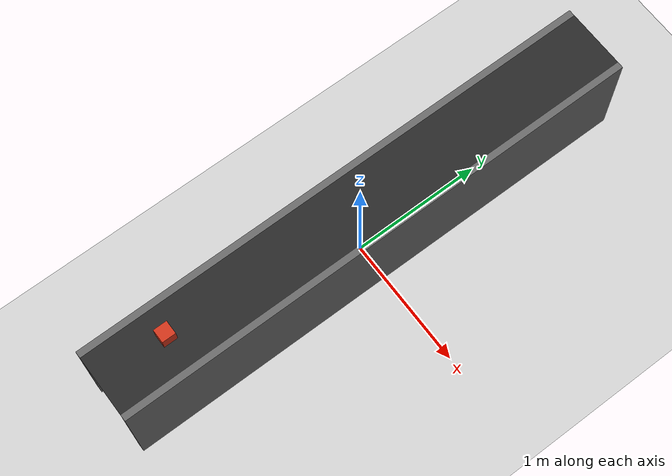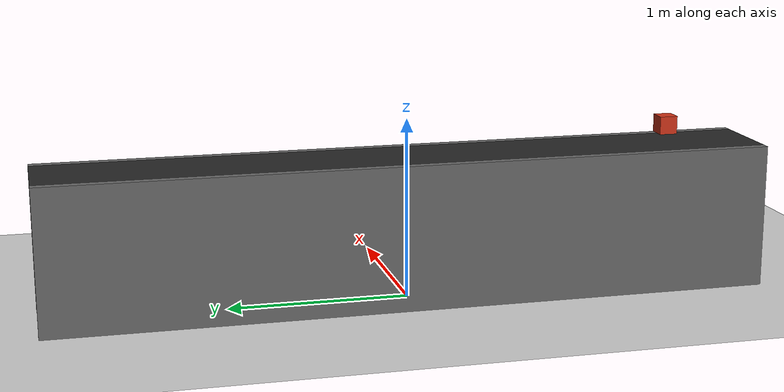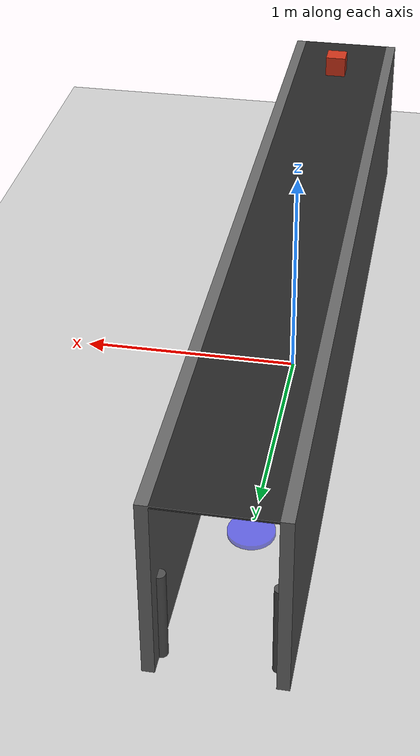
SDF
<?xml version="1.0" ?>
<!--
  Conveyor System Test World
  For testing conveyor belt and box spawning without robots
-->
<sdf version="1.6">
  <world name="conveyor_test">

    <!-- Physics -->
    <physics type="ode">
      <max_step_size>0.001</max_step_size>
      <real_time_factor>1</real_time_factor>
      <real_time_update_rate>1000</real_time_update_rate>
      <gravity>0 0 -9.81</gravity>
    </physics>

    <!-- Lighting -->
    <include>
      <uri>model://sun</uri>
    </include>

    <!-- Ground plane -->
    <include>
      <uri>model://ground_plane</uri>
    </include>

    <!-- Long Conveyor Belt -->
    <include>
      <name>assembly_conveyor</name>
      <uri>model://long_conveyor_belt</uri>
      <pose>0 0 0 0 0 0</pose>
    </include>

    <!-- Test box on conveyor -->
    <include>
      <name>test_box_1</name>
      <uri>model://payload_box</uri>
      <pose>0 -1.5 0.85 0 0 0</pose>
    </include>

    <!-- Station markers (visual only) -->
    <model name="station_1_marker">
      <static>true</static>
      <pose>0 -1.2 0.01 0 0 0</pose>
      <link name="marker_link">
        <visual name="visual">
          <geometry>
            <cylinder>
              <radius>0.1</radius>
              <length>0.02</length>
            </cylinder>
          </geometry>
          <material>
            <ambient>1 0 0 0.5</ambient>
            <diffuse>1 0 0 0.5</diffuse>
          </material>
        </visual>
      </link>
    </model>

    <model name="station_2_marker">
      <static>true</static>
      <pose>0 0 0.01 0 0 0</pose>
      <link name="marker_link">
        <visual name="visual">
          <geometry>
            <cylinder>
              <radius>0.1</radius>
              <length>0.02</length>
            </cylinder>
          </geometry>
          <material>
            <ambient>0 1 0 0.5</ambient>
            <diffuse>0 1 0 0.5</diffuse>
          </material>
        </visual>
      </link>
    </model>

    <model name="station_3_marker">
      <static>true</static>
      <pose>0 1.2 0.01 0 0 0</pose>
      <link name="marker_link">
        <visual name="visual">
          <geometry>
            <cylinder>
              <radius>0.1</radius>
              <length>0.02</length>
            </cylinder>
          </geometry>
          <material>
            <ambient>0 0 1 0.5</ambient>
            <diffuse>0 0 1 0.5</diffuse>
          </material>
        </visual>
      </link>
    </model>

  </world>
</sdf>

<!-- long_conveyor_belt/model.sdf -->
<!--
  Long Conveyor Belt for Multi-Robot Assembly Line
  Length: 4 meters (supports 3 robot stations)
  Based on IFRA-Cranfield conveyor belt plugin.
-->
<sdf version="1.6">
  <model name="long_conveyor_belt">

    <!-- Static frame/structure of the conveyor -->
    <model name="conveyorbelt_fixed">
      <static>true</static>

      <!-- Main belt structure -->
      <link name="belt_visual">
        <pose>0 0 0 0 0 0</pose>

        <!-- Belt frame - left side -->
        <visual name="frame_left">
          <pose>-0.25 0 0.4 0 0 0</pose>
          <geometry>
            <box>
              <size>0.05 4.0 0.8</size>
            </box>
          </geometry>
          <material>
            <ambient>0.3 0.3 0.3 1</ambient>
            <diffuse>0.4 0.4 0.4 1</diffuse>
          </material>
        </visual>
        <collision name="frame_left_collision">
          <pose>-0.25 0 0.4 0 0 0</pose>
          <geometry>
            <box>
              <size>0.05 4.0 0.8</size>
            </box>
          </geometry>
        </collision>

        <!-- Belt frame - right side -->
        <visual name="frame_right">
          <pose>0.25 0 0.4 0 0 0</pose>
          <geometry>
            <box>
              <size>0.05 4.0 0.8</size>
            </box>
          </geometry>
          <material>
            <ambient>0.3 0.3 0.3 1</ambient>
            <diffuse>0.4 0.4 0.4 1</diffuse>
          </material>
        </visual>
        <collision name="frame_right_collision">
          <pose>0.25 0 0.4 0 0 0</pose>
          <geometry>
            <box>
              <size>0.05 4.0 0.8</size>
            </box>
          </geometry>
        </collision>

        <!-- Legs -->
        <visual name="leg_front_left">
          <pose>-0.22 -1.9 0.2 0 0 0</pose>
          <geometry>
            <cylinder>
              <radius>0.025</radius>
              <length>0.4</length>
            </cylinder>
          </geometry>
          <material>
            <ambient>0.2 0.2 0.2 1</ambient>
            <diffuse>0.3 0.3 0.3 1</diffuse>
          </material>
        </visual>

        <visual name="leg_front_right">
          <pose>0.22 -1.9 0.2 0 0 0</pose>
          <geometry>
            <cylinder>
              <radius>0.025</radius>
              <length>0.4</length>
            </cylinder>
          </geometry>
          <material>
            <ambient>0.2 0.2 0.2 1</ambient>
            <diffuse>0.3 0.3 0.3 1</diffuse>
          </material>
        </visual>

        <visual name="leg_back_left">
          <pose>-0.22 1.9 0.2 0 0 0</pose>
          <geometry>
            <cylinder>
              <radius>0.025</radius>
              <length>0.4</length>
            </cylinder>
          </geometry>
          <material>
            <ambient>0.2 0.2 0.2 1</ambient>
            <diffuse>0.3 0.3 0.3 1</diffuse>
          </material>
        </visual>

        <visual name="leg_back_right">
          <pose>0.22 1.9 0.2 0 0 0</pose>
          <geometry>
            <cylinder>
              <radius>0.025</radius>
              <length>0.4</length>
            </cylinder>
          </geometry>
          <material>
            <ambient>0.2 0.2 0.2 1</ambient>
            <diffuse>0.3 0.3 0.3 1</diffuse>
          </material>
        </visual>

        <!-- Middle legs for support -->
        <visual name="leg_mid_left">
          <pose>-0.22 0 0.2 0 0 0</pose>
          <geometry>
            <cylinder>
              <radius>0.025</radius>
              <length>0.4</length>
            </cylinder>
          </geometry>
          <material>
            <ambient>0.2 0.2 0.2 1</ambient>
            <diffuse>0.3 0.3 0.3 1</diffuse>
          </material>
        </visual>

        <visual name="leg_mid_right">
          <pose>0.22 0 0.2 0 0 0</pose>
          <geometry>
            <cylinder>
              <radius>0.025</radius>
              <length>0.4</length>
            </cylinder>
          </geometry>
          <material>
            <ambient>0.2 0.2 0.2 1</ambient>
            <diffuse>0.3 0.3 0.3 1</diffuse>
          </material>
        </visual>

        <!-- Belt surface visual (static part) -->
        <visual name="belt_surface">
          <pose>0 0 0.795 0 0 0</pose>
          <geometry>
            <box>
              <size>0.45 4.0 0.01</size>
            </box>
          </geometry>
          <material>
            <ambient>0.1 0.1 0.1 1</ambient>
            <diffuse>0.15 0.15 0.15 1</diffuse>
          </material>
        </visual>
      </link>
    </model>

    <!-- Moving belt surface -->
    <model name="conveyorbelt_moving">
      <allow_auto_disable>0</allow_auto_disable>
      <static>false</static>
      <pose>0 0 0.8 0 0 0</pose>

      <link name="belt_moving">
        <inertial>
          <mass>100.0</mass>
          <inertia>
            <ixx>0.0</ixx>
            <ixy>0.0</ixy>
            <ixz>0.0</ixz>
            <iyy>0.0</iyy>
            <iyz>0.0</iyz>
            <izz>0.0</izz>
          </inertia>
        </inertial>

        <collision name="belt_collision">
          <geometry>
            <box>
              <size>0.42 4.0 0.00001</size>
            </box>
          </geometry>
          <surface>
            <friction>
              <ode>
                <mu>100.0</mu>
                <mu2>100.0</mu2>
              </ode>
              <torsional>
                <coefficient>1000.0</coefficient>
                <patch_radius>0.1</patch_radius>
              </torsional>
            </friction>
          </surface>
        </collision>
      </link>
    </model>

    <!-- Joint connecting moving and fixed parts -->
    <joint name="belt_joint" type="prismatic">
      <parent>conveyorbelt_fixed::belt_visual</parent>
      <child>conveyorbelt_moving::belt_moving</child>
      <axis>
        <xyz>0 1 0</xyz>
        <limit>
          <lower>0.0</lower>
          <upper>0.01</upper>
        </limit>
      </axis>
    </joint>

    <!-- ROS2 Conveyor Belt Plugin -->
    <plugin name="ros2_conveyorbelt_plugin" filename="libros2_conveyorbelt_plugin.so">
      <ros>
        <namespace>conveyor</namespace>
      </ros>
      <max_velocity>0.5</max_velocity>
      <publish_rate>100</publish_rate>
    </plugin>

  </model>
</sdf>

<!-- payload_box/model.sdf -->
<sdf version="1.6">
  <model name="payload_box">
    <static>false</static>

    <link name="box_link">
      <pose>0 0 0.05 0 0 0</pose>

      <inertial>
        <mass>0.5</mass>
        <inertia>
          <ixx>0.000833</ixx>
          <ixy>0</ixy>
          <ixz>0</ixz>
          <iyy>0.000833</iyy>
          <iyz>0</iyz>
          <izz>0.000833</izz>
        </inertia>
      </inertial>

      <collision name="collision">
        <geometry>
          <box>
            <size>0.1 0.1 0.1</size>
          </box>
        </geometry>
        <surface>
          <friction>
            <ode>
              <mu>1.0</mu>
              <mu2>1.0</mu2>
            </ode>
          </friction>
          <contact>
            <ode>
              <kp>1e6</kp>
              <kd>1.0</kd>
            </ode>
          </contact>
        </surface>
      </collision>

      <visual name="visual">
        <geometry>
          <box>
            <size>0.1 0.1 0.1</size>
          </box>
        </geometry>
        <material>
          <ambient>0.8 0.2 0.1 1</ambient>
          <diffuse>0.8 0.2 0.1 1</diffuse>
          <specular>0.1 0.1 0.1 1</specular>
        </material>
      </visual>
    </link>
  </model>
</sdf>
